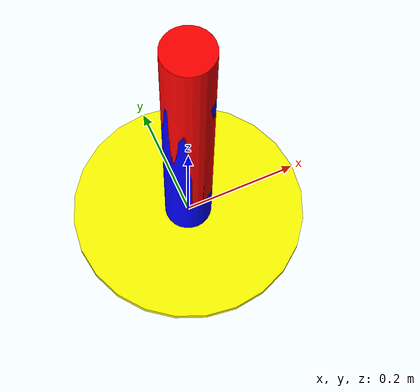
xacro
<?xml version="1.0"?>

<robot xmlns:xacro="http://www.ros.org/wiki/xacro"
    xmlns:sensor="http://playerstage.sourceforge.net/gazebo/xmlschema/#sensor"
    xmlns:controller="http://playerstage.sourceforge.net/gazebo/xmlschema/#controller"
    xmlns:interface="http://playerstage.sourceforge.net/gazebo/xmlschema/#interface"
    name="ex_urdf_pan_tilt">

    <xacro:property name="base_link_length" value="0.01" />
    <xacro:property name="base_link_radius" value="0.2" />

    <xacro:property name="pan_link_length" value="0.4" />
    <xacro:property name="pan_link_radius" value="0.04" />

    <xacro:property name="tilt_link_length" value="0.4" />
    <xacro:property name="tilt_link_radius" value="0.04" />

    <xacro:macro name="inertial_matrix" params="mass">
               <inertial>
                       <mass value="${mass}" />
                       <inertia ixx="1." ixy="0.0" ixz="0.0"
                                iyy="1." iyz="0.0"
                                izz="1." />
               </inertial>
    </xacro:macro>

   <xacro:macro name="transmission_block" params="joint_name">
    <transmission name="tran1">
      <type>transmission_interface/SimpleTransmission</type>
      <joint name="${joint_name}">
        <hardwareInterface>hardware_interface/PositionJointInterface</hardwareInterface>
      </joint>
      <actuator name="motor1">
        <hardwareInterface>hardware_interface/PositionJointInterface</hardwareInterface>
        <mechanicalReduction>1</mechanicalReduction>
      </actuator>
    </transmission>
   </xacro:macro>

  <link name="base_link">

    <visual>
      <geometry>
         <cylinder length="${base_link_length}" radius="${base_link_radius}"/>
      </geometry>
      <origin rpy="0 0 0" xyz="0 0 0"/>
      <material name="yellow">
        <color rgba="1 1 0 1"/>
      </material>
    </visual>

    <collision>
      <geometry>
         <cylinder length="${base_link_length+0.02}" radius="0.2"/>
      </geometry>
      <origin rpy="0 0 0" xyz="0 0 0"/>
    </collision>
    <xacro:inertial_matrix mass="1"/>
  </link>

  <gazebo reference="base_link">
    <material>Gazebo/Black</material>
  </gazebo>

  <joint name="pan_joint" type="revolute">
    <parent link="base_link"/>
    <child link="pan_link"/>
    <origin xyz="0 0 0.1"/>
    <axis xyz="0 0 1" />
    <limit effort="300" velocity="0.1" lower="-3.14" upper="3.14"/>
    <dynamics damping="50" friction="1"/>
  </joint>

  <link name="pan_link">
    <visual>
      <geometry>
         <cylinder length="${pan_link_length}" radius="${pan_link_radius}"/>
      </geometry>
      <origin rpy="0 0 0" xyz="0 0 0.09"/>
      <material name="red">
        <color rgba="0 0 1 1"/>
      </material>
    </visual>
    <collision>
      <geometry>
         <cylinder length="${pan_link_length}" radius="${pan_link_radius+0.02}"/>
      </geometry>
      <origin rpy="0 0 0" xyz="0 0 0.09"/>
    </collision>
    <xacro:inertial_matrix mass="1"/>
  </link>

  <gazebo reference="pan_link">
    <material>Gazebo/Blue</material>
  </gazebo>

  <joint name="tilt_joint" type="revolute">
    <parent link="pan_link"/>
    <child link="tilt_link"/>
    <origin xyz="0 0 0.2"/>
    <axis xyz="0 1 0" />
    <limit effort="300" velocity="0.1" lower="-4.71239" upper="-1.570796"/>
    <dynamics damping="50" friction="1"/>
  </joint>

  <link name="tilt_link">
    <visual>
      <geometry>
         <cylinder length="${tilt_link_length}" radius="${tilt_link_radius}"/>
      </geometry>
      <origin rpy="0 0 0" xyz="0 0 0"/>
      <material name="green">
        <color rgba="1 0 0 1"/>
      </material>
    </visual>
    <collision>
      <geometry>
         <cylinder length="${tilt_link_length}" radius="${tilt_link_radius+0.2}"/>
      </geometry>
      <origin rpy="0 0 0" xyz="0 0 0"/>
    </collision>
    <xacro:inertial_matrix mass="1"/>
  </link>

  <gazebo reference="tilt_link">
    <material>Gazebo/Red</material>
  </gazebo>

   <xacro:transmission_block joint_name="pan_joint"/>
   <xacro:transmission_block joint_name="tilt_joint"/>

  <gazebo>
    <plugin name="gazebo_ros_control" filename="libgazebo_ros_control.so">
      <robotNamespace>/ex_urdf_pan_tilt</robotNamespace>
    </plugin>
  </gazebo>

</robot>
